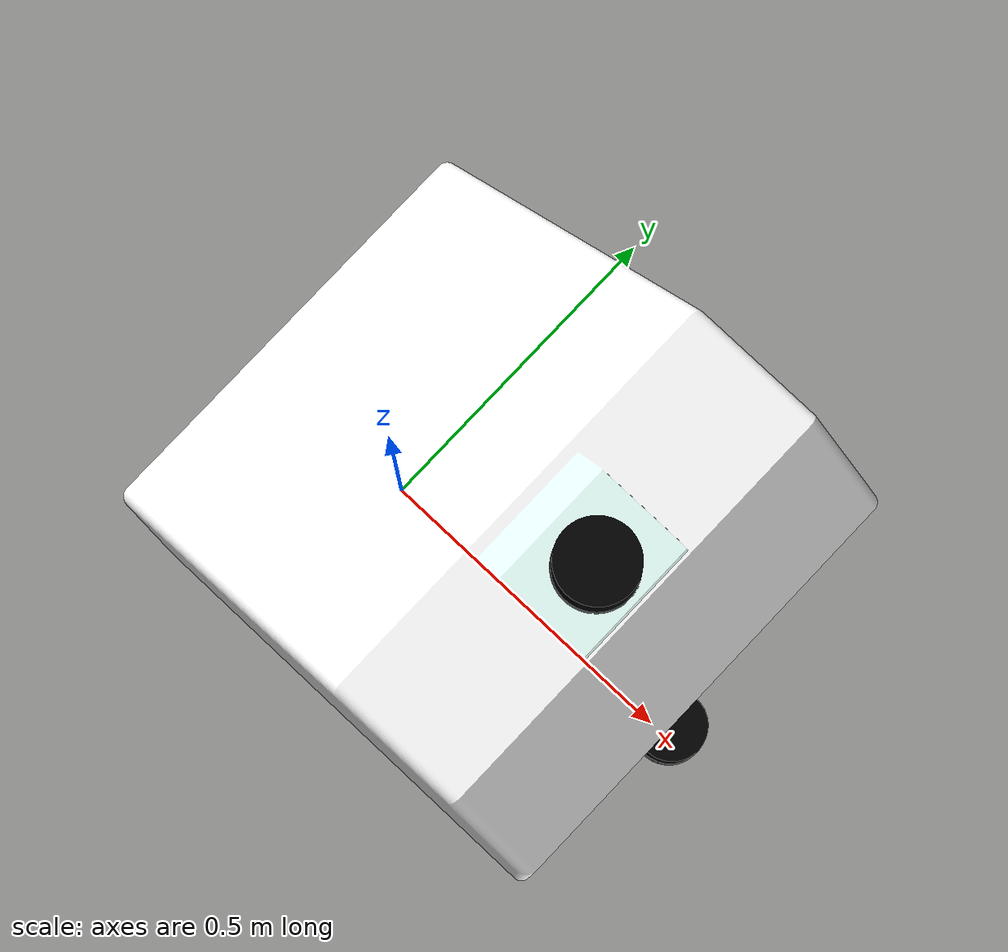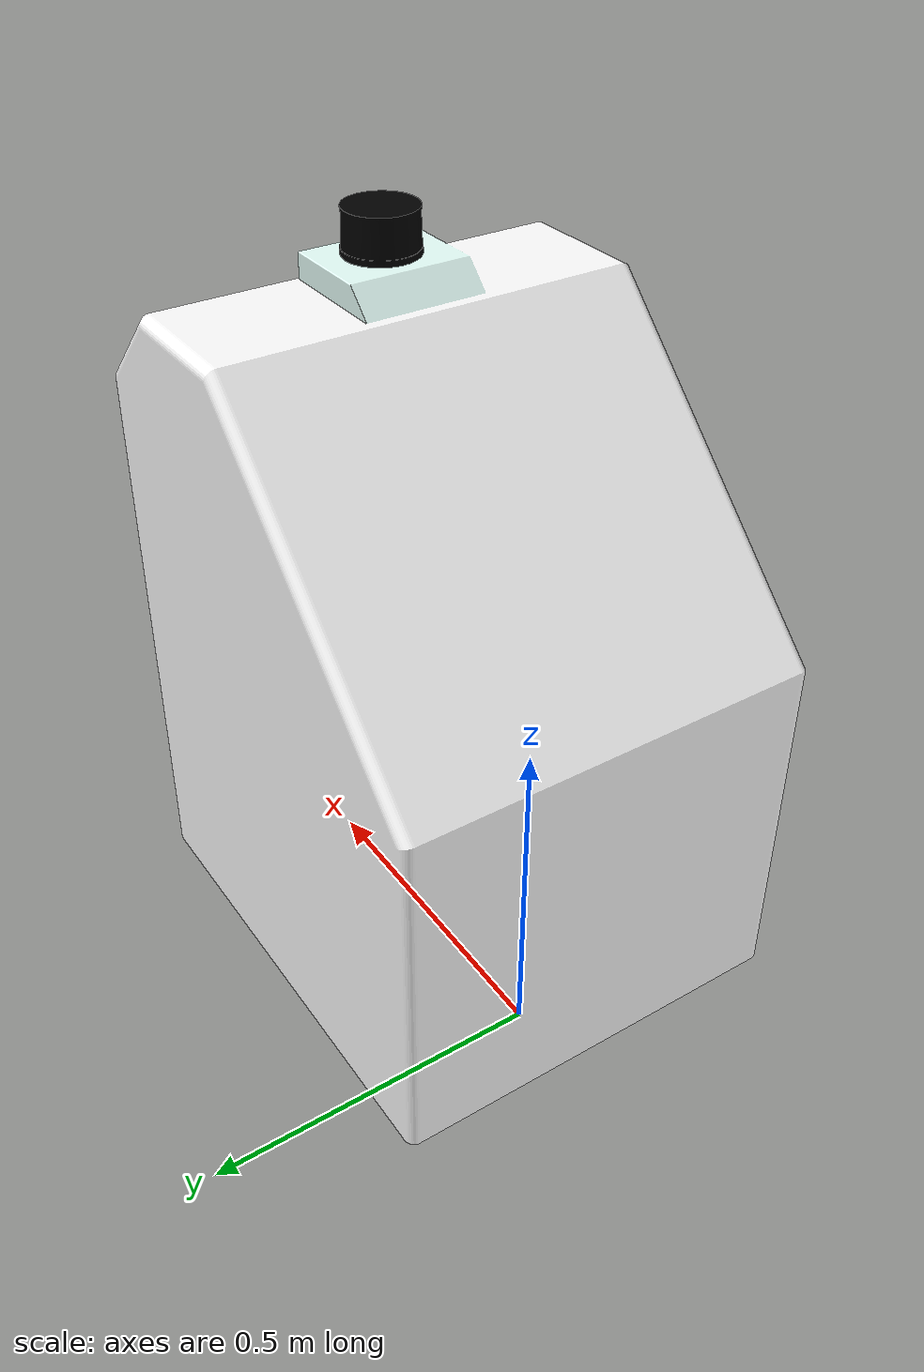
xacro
<?xml version="1.0"?>
<robot xmlns:xacro="http://ros.org/wiki/xacro">
  <!-- load parameter -->
  <xacro:property name="vehicle_info" value="${load_yaml('$(find sample_mobile_robot_description)/config/vehicle_info.param.yaml')}"/>

  <!-- vehicle body -->
  <link name="base_link">
    <visual>
      <origin xyz="0 0 0" rpy="0 0 3.14159265358979"/>
      <geometry>
        <mesh filename="package://sample_mobile_robot_description/mesh/sample_mobile_robot.dae" scale="1 1 1"/>
      </geometry>
    </visual>
  </link>
</robot>
